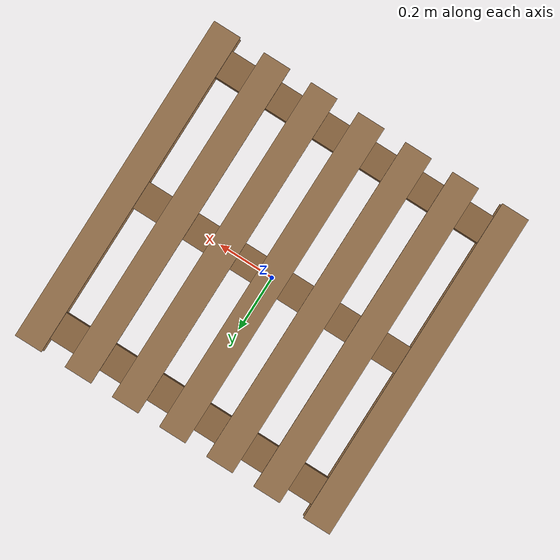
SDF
<?xml version="1.0"?>
<sdf version="1.8">
  <model name="pallet">
    <static>true</static>
    <link name="link">
      <inertial>
        <mass>20.0</mass>
        <inertia>
          <ixx>1.2</ixx><iyy>1.5</iyy><izz>2.5</izz>
          <ixy>0</ixy><ixz>0</ixz><iyz>0</iyz>
        </inertia>
      </inertial>

      <!-- Top deck boards (7 planks along X) -->
      <visual name="top_1"><pose>-0.55 0 0.13 0 0 0</pose><geometry><box><size>0.1 1.2 0.02</size></box></geometry><material><ambient>0.55 0.4 0.25 1</ambient><diffuse>0.6 0.45 0.3 1</diffuse></material></visual>
      <visual name="top_2"><pose>-0.36 0 0.13 0 0 0</pose><geometry><box><size>0.1 1.2 0.02</size></box></geometry><material><ambient>0.55 0.4 0.25 1</ambient><diffuse>0.6 0.45 0.3 1</diffuse></material></visual>
      <visual name="top_3"><pose>-0.18 0 0.13 0 0 0</pose><geometry><box><size>0.1 1.2 0.02</size></box></geometry><material><ambient>0.55 0.4 0.25 1</ambient><diffuse>0.6 0.45 0.3 1</diffuse></material></visual>
      <visual name="top_4"><pose>0 0 0.13 0 0 0</pose><geometry><box><size>0.1 1.2 0.02</size></box></geometry><material><ambient>0.55 0.4 0.25 1</ambient><diffuse>0.6 0.45 0.3 1</diffuse></material></visual>
      <visual name="top_5"><pose>0.18 0 0.13 0 0 0</pose><geometry><box><size>0.1 1.2 0.02</size></box></geometry><material><ambient>0.55 0.4 0.25 1</ambient><diffuse>0.6 0.45 0.3 1</diffuse></material></visual>
      <visual name="top_6"><pose>0.36 0 0.13 0 0 0</pose><geometry><box><size>0.1 1.2 0.02</size></box></geometry><material><ambient>0.55 0.4 0.25 1</ambient><diffuse>0.6 0.45 0.3 1</diffuse></material></visual>
      <visual name="top_7"><pose>0.55 0 0.13 0 0 0</pose><geometry><box><size>0.1 1.2 0.02</size></box></geometry><material><ambient>0.55 0.4 0.25 1</ambient><diffuse>0.6 0.45 0.3 1</diffuse></material></visual>

      <!-- Cross stringers (3 blocks along Y) -->
      <visual name="stringer_l"><pose>0 -0.5 0.07 0 0 0</pose><geometry><box><size>1.2 0.1 0.1</size></box></geometry><material><ambient>0.5 0.35 0.2 1</ambient><diffuse>0.55 0.4 0.25 1</diffuse></material></visual>
      <visual name="stringer_c"><pose>0 0 0.07 0 0 0</pose><geometry><box><size>1.2 0.1 0.1</size></box></geometry><material><ambient>0.5 0.35 0.2 1</ambient><diffuse>0.55 0.4 0.25 1</diffuse></material></visual>
      <visual name="stringer_r"><pose>0 0.5 0.07 0 0 0</pose><geometry><box><size>1.2 0.1 0.1</size></box></geometry><material><ambient>0.5 0.35 0.2 1</ambient><diffuse>0.55 0.4 0.25 1</diffuse></material></visual>

      <!-- Bottom boards -->
      <visual name="bot_1"><pose>-0.55 0 0.01 0 0 0</pose><geometry><box><size>0.1 1.2 0.02</size></box></geometry><material><ambient>0.5 0.35 0.2 1</ambient><diffuse>0.55 0.4 0.25 1</diffuse></material></visual>
      <visual name="bot_2"><pose>0 0 0.01 0 0 0</pose><geometry><box><size>0.1 1.2 0.02</size></box></geometry><material><ambient>0.5 0.35 0.2 1</ambient><diffuse>0.55 0.4 0.25 1</diffuse></material></visual>
      <visual name="bot_3"><pose>0.55 0 0.01 0 0 0</pose><geometry><box><size>0.1 1.2 0.02</size></box></geometry><material><ambient>0.5 0.35 0.2 1</ambient><diffuse>0.55 0.4 0.25 1</diffuse></material></visual>

      <!-- Simplified collision: single box enclosing the pallet volume -->
      <collision name="collision">
        <pose>0 0 0.07 0 0 0</pose>
        <geometry><box><size>1.2 1.2 0.14</size></box></geometry>
        <surface><friction><ode><mu>0.9</mu><mu2>0.9</mu2></ode></friction></surface>
      </collision>
    </link>
  </model>
</sdf>
